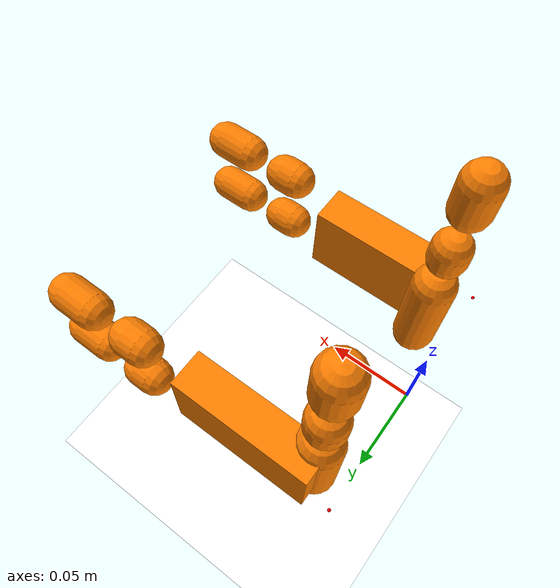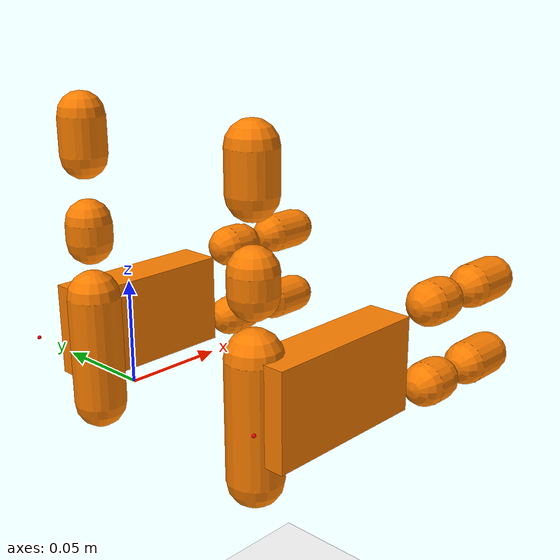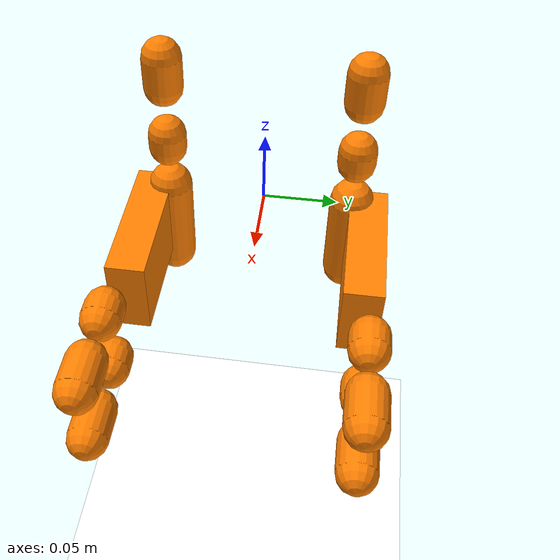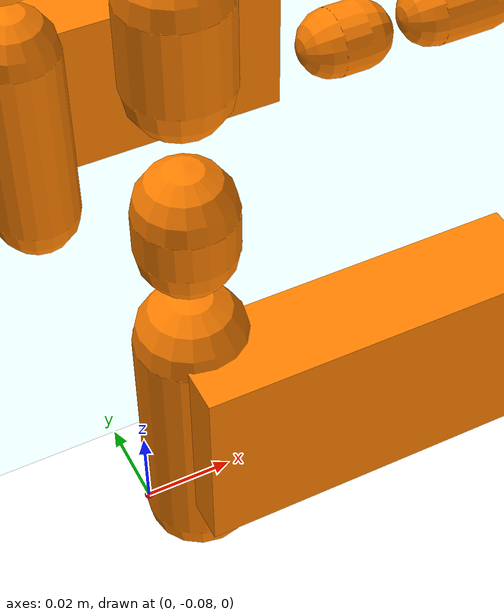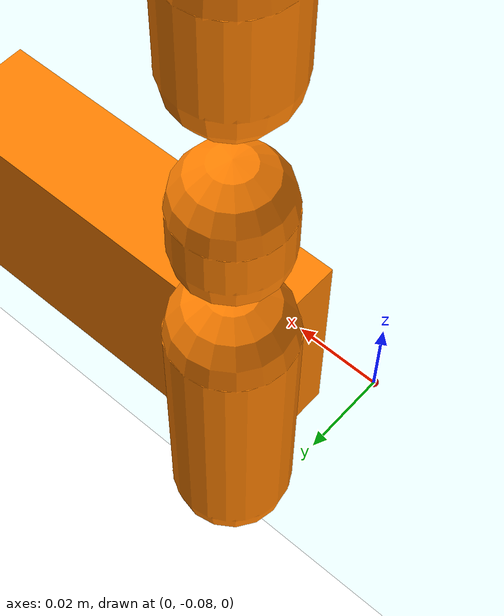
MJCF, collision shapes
<mujoco model="An empty scene">
  <include file="ftl_xleo_dual_hand_position.xml" />
  <option>
  </option>

  <default>
    <default class="convex_decomposition">
      <geom contype="1" conaffinity="15" rgba="0.3 0.3 0.3 1" condim="3" friction="0.8 0.01 0.0001" solimp="0.25 0.99 0.015 0.5 1" solref="0.03 1" />
    </default>
  </default>

  <statistic center="0.05 0 0" extent="0.6" meansize="0.01"/>

  <visual>
    <rgba force="1 0 0 1"/>
    <global azimuth="120" elevation="-40"/>
    <map force="0.01" stiffness="500"/>
    <scale forcewidth="0.1" contactwidth="0.5" contactheight="0.2"/>
    <quality shadowsize="8192"/>
  </visual>

  <asset>
    <texture type="skybox" builtin="gradient" rgb1="1 1 1" rgb2="1 1 1" width="800" height="800"/>
    <texture type="2d" name="groundplane" builtin="checker" mark="edge" rgb1="1 1 1" rgb2="1 1 1" markrgb="0 0 0" width="300" height="300"/>
    <material name="groundplane" texture="groundplane" texuniform="true" texrepeat="5 5" reflectance="0"/>
  </asset>

  <worldbody>
    <light pos="0 0 1.5" dir="0 0 -1" directional="true"/>
    <geom name="floor" pos="0 0 -0.25" size="0 0 0.01" type="plane" material="groundplane" contype="0" conaffinity="0" group="1"/>
  </worldbody>

  <!-- Exclude finger root (L0/R0) and fingertip (L2/R2) collisions with arm.
       Only wrist and finger middle links (L1/R1) participate in massage contact. -->

</mujoco>

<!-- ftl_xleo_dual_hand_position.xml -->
<mujoco model="xleo">
  <option timestep="0.002" integrator="Euler">
    <flag eulerdamp="disable" />
  </option>

  <compiler angle="radian" meshdir="../ftl_meshes/"/>

  <default>
    <default class="visual">
      <geom type="mesh" contype="0" conaffinity="0" group="0" density="0" rgba="0.1 0.1 0.1 1"/>
    </default>
    <default class="collision">
      <geom type="mesh" group="3" rgba="1 0.5 0 1" contype="1" conaffinity="1"/>
    </default>
    <default class="finger_joint">
      <joint damping="0.1" armature="0.01" frictionloss="0.02"/>
    </default>
  </default>

  <asset>
    <mesh name="LINK_HAND_BASE_L" content_type="model/stl" file="LINK_HAND_BASE_L.STL"/>
    <mesh name="LINK_HAND_BASE_L_convex" content_type="model/stl" file="convex_new/LINK_HAND_BASE_L_convex.stl"/>
    <mesh name="LINK_F0_L0" content_type="model/stl" file="LINK_F0_L0.STL"/>
    <mesh name="LINK_F0_L0_convex" content_type="model/stl" file="convex_new/LINK_F0_L0_convex.stl"/>
    <mesh name="LINK_F0_L1" content_type="model/stl" file="LINK_F0_L1.STL"/>
    <mesh name="LINK_F0_L1_convex" content_type="model/stl" file="convex_new/LINK_F0_L1_convex.stl"/>
    <mesh name="LINK_F0_L2" content_type="model/stl" file="LINK_F0_L2.STL"/>
    <mesh name="LINK_F0_L2_convex" content_type="model/stl" file="convex_new/LINK_F0_L2_convex.stl"/>
    <mesh name="LINK_F1_L0" content_type="model/stl" file="LINK_F1_L0.STL"/>
    <mesh name="LINK_F1_L0_convex" content_type="model/stl" file="convex_new/LINK_F1_L0_convex.stl"/>
    <mesh name="LINK_F1_L1" content_type="model/stl" file="LINK_F1_L1.STL"/>
    <mesh name="LINK_F1_L1_convex" content_type="model/stl" file="convex_new/LINK_F1_L1_convex.stl"/>
    <mesh name="LINK_F1_L2" content_type="model/stl" file="LINK_F1_L2.STL"/>
    <mesh name="LINK_F1_L2_convex" content_type="model/stl" file="convex_new/LINK_F1_L2_convex.stl"/>
    <mesh name="LINK_F2_L0" content_type="model/stl" file="LINK_F2_L0.STL"/>
    <mesh name="LINK_F2_L0_convex" content_type="model/stl" file="convex_new/LINK_F2_L0_convex.stl"/>
    <mesh name="LINK_F2_L1" content_type="model/stl" file="LINK_F2_L1.STL"/>
    <mesh name="LINK_F2_L1_convex" content_type="model/stl" file="convex_new/LINK_F2_L1_convex.stl"/>
    <mesh name="LINK_F2_L2" content_type="model/stl" file="LINK_F2_L2.STL"/>
    <mesh name="LINK_F2_L2_convex" content_type="model/stl" file="convex_new/LINK_F2_L2_convex.stl"/>
    <mesh name="LINK_HAND_BASE_R" content_type="model/stl" file="LINK_HAND_BASE_R.STL"/>
    <mesh name="LINK_HAND_BASE_R_convex" content_type="model/stl" file="convex_new/LINK_HAND_BASE_R_convex.stl"/>
  </asset>

  <contact>
    <exclude body1="L_WRIST" body2="LINK_F0_L0"/>
    <exclude body1="L_WRIST" body2="LINK_F1_L0"/>
    <exclude body1="L_WRIST" body2="LINK_F2_L0"/>
    <exclude body1="L_WRIST" body2="LINK_F0_L1"/>
    <exclude body1="L_WRIST" body2="LINK_F1_L1"/>
    <exclude body1="L_WRIST" body2="LINK_F2_L1"/>

    <exclude body1="R_WRIST" body2="LINK_F0_R0"/>
    <exclude body1="R_WRIST" body2="LINK_F1_R0"/>
    <exclude body1="R_WRIST" body2="LINK_F2_R0"/>
    <exclude body1="R_WRIST" body2="LINK_F0_R1"/>
    <exclude body1="R_WRIST" body2="LINK_F1_R1"/>
    <exclude body1="R_WRIST" body2="LINK_F2_R1"/>
  </contact>

  <worldbody>
    <!-- Left hand -->
    <body name="L_WRIST" pos="0 0.08 0.0">
      <inertial pos="0.0475989 -0.0039991 0.000164171" quat="0.000685685 0.650732 -0.096053 0.753208" mass="0.5904" diaginertia="0.000778977 0.000587765 0.000437887"/>
      <joint name="J_LINK_HAND_BASE_L_X" type="slide" axis="1 0 0" range="-0.2 0.2" damping="2.0" armature="0.05"/>
      <joint name="J_LINK_HAND_BASE_L_Y" type="slide" axis="0 1 0" range="-0.2 0.2" damping="2.0" armature="0.05"/>
      <joint name="J_LINK_HAND_BASE_L_ROLL" type="hinge" axis="1 0 0" range="-1.57 1.57" damping="0.5" armature="0.005"/>
      <joint name="J_LINK_HAND_BASE_L_PITCH" type="hinge" axis="0 1 0" range="-1.57 1.57" damping="0.5" armature="0.005"/>
      <joint name="J_LINK_HAND_BASE_L_YAW" type="hinge" axis="0 0 1" range="-1.57 1.57" damping="0.5" armature="0.005"/>
      <geom class="visual" quat="0.707105 0.707108 0 0" mesh="LINK_HAND_BASE_L" rgba="1 1 1 1"/>
      <geom class="collision" type="box" pos="0.06 -0.01 0" size="0.045 0.012 0.025"/>
      <site name="site_L_WRIST" type="sphere" size="0.001" rgba="1 0 0 1" />
      <body name="LINK_F0_L0" pos="0.021499 -0.0208651 0.0224999" quat="-2.59734e-06 0.707105 0 0.707108">
        <inertial pos="-3.617e-05 0 -0.00084515" mass="0.026087" diaginertia="1.92e-06 1.52e-06 1.22e-06"/>
        <joint name="J_F0_L0" class="finger_joint" pos="0 0 0" axis="0 0 1" range="0 1.9199"/>
        <geom class="visual" mesh="LINK_F0_L0"/>
        <geom class="collision" type="capsule" pos="-0.03 0 0" quat="0.707 0 0.707 0" size="0.014 0.03"/>
        <site name="site_F0_L0" size="0.001"/>
        <body name="LINK_F0_L1" quat="0.707105 0.707108 0 0">
          <inertial pos="0.0375062 -8.894e-05 0.0001648" quat="0.511508 0.483488 0.515615 0.48861" mass="0.0688816" diaginertia="2.05529e-05 2.00084e-05 6.49879e-06"/>
          <joint name="J_F0_L1" class="finger_joint" pos="0 0 0" axis="0 0 1" range="-0.1745 0.7854"/>
          <geom class="visual" mesh="LINK_F0_L1"/>
          <geom class="collision" type="capsule" pos="0.035 0 0" quat="0.707 0 0.707 0" size="0.012 0.005"/>
          <body name="LINK_F0_L2" pos="0.05425 0 0">
            <inertial pos="0.0208975 -0.00213483 -0.00106078" quat="0.479898 0.503774 0.561192 0.448301" mass="0.0310237" diaginertia="7.08669e-06 6.49441e-06 2.3189e-06"/>
            <joint name="J_F0_L2" class="finger_joint" pos="0 0 0" axis="0 0 1" range="-0.4363 1.5708"/>
            <geom class="visual" mesh="LINK_F0_L2"/>
            <geom class="collision" type="capsule" pos="0.03 0 0" quat="0.707 0 0.707 0" size="0.012 0.01"/>
          </body>
        </body>
      </body>
      <body name="LINK_F1_L0" pos="0.10232 -0.00574008 0.0225" quat="-3.67321e-06 1 0 0">
        <inertial pos="3.617e-05 0 0.00084515" mass="0.026087" diaginertia="1.92e-06 1.52e-06 1.22e-06"/>
        <joint name="J_F1_L0" class="finger_joint" pos="0 0 0" axis="0 0 1" range="-0.4363 1.8326"/>
        <geom class="visual" mesh="LINK_F1_L0"/>
        <site name="site_F1_L0" size="0.001"/>
        <body name="LINK_F1_L1" quat="0.707105 -0.707108 0 0">
          <inertial pos="0.0324375 -0.00016602 -0.0001648" quat="0.492035 0.508606 0.488885 0.51011" mass="0.0702732" diaginertia="1.85812e-05 1.77891e-05 6.95973e-06"/>
          <joint name="J_F1_L1" class="finger_joint" pos="0 0 0" axis="0 0 1" range="-0.4363 0.4363"/>
          <geom class="visual" mesh="LINK_F1_L1"/>
          <geom class="collision" type="capsule" pos="0.035 0 0" quat="0.707 0 0.707 0" size="0.012 0.005"/>
          <body name="LINK_F1_L2" pos="0.04825 0 0" quat="0.707105 0.707108 0 0">
            <inertial pos="0.0208065 -0.00102362 -0.00132199" quat="0.466616 0.545959 0.523663 0.458231" mass="0.0257518" diaginertia="6.36399e-06 5.8103e-06 1.96571e-06"/>
            <joint name="J_F1_L2" class="finger_joint" pos="0 0 0" axis="0 0 1" range="-0.4363 1.5708"/>
            <geom class="visual" mesh="LINK_F1_L2"/>
            <geom class="collision" type="capsule" pos="0.03 0 0" quat="0.707 0 0.707 0" size="0.012 0.01"/>
            <site name="site_left_f1_tip" pos="0.05 0 0" euler="3.1415 0 0" type="sphere" size="0.001" rgba="1 0 0 1"/>
          </body>
        </body>
      </body>
      <body name="LINK_F2_L0" pos="0.10232 -0.00573992 -0.0225" quat="-3.67321e-06 1 0 0">
        <inertial pos="3.617e-05 0 0.00084515" mass="0.026087" diaginertia="1.92e-06 1.52e-06 1.22e-06"/>
        <joint name="J_F2_L0" class="finger_joint" pos="0 0 0" axis="0 0 1" range="-0.4363 1.8326"/>
        <geom class="visual" mesh="LINK_F2_L0"/>
        <site name="site_F2_L0" size="0.001"/>
        <body name="LINK_F2_L1" quat="0.707105 -0.707108 0 0">
          <inertial pos="0.0324375 -0.00016602 -0.0001648" quat="0.492035 0.508606 0.488885 0.51011" mass="0.0702732" diaginertia="1.85812e-05 1.77891e-05 6.95973e-06"/>
          <joint name="J_F2_L1" class="finger_joint" pos="0 0 0" axis="0 0 1" range="-0.4363 0.4363"/>
          <geom class="visual" mesh="LINK_F2_L1"/>
          <geom class="collision" type="capsule" pos="0.035 0 0" quat="0.707 0 0.707 0" size="0.012 0.005"/>
          <body name="LINK_F2_L2" pos="0.04825 0 0" quat="0.707105 0.707108 0 0">
            <inertial pos="0.0208065 -0.00102362 -0.00132199" quat="0.466616 0.545959 0.523663 0.458231" mass="0.0257518" diaginertia="6.36399e-06 5.8103e-06 1.96571e-06"/>
            <joint name="J_F2_L2" class="finger_joint" pos="0 0 0" axis="0 0 1" range="-0.4363 1.5708"/>
            <geom class="visual" mesh="LINK_F2_L2"/>
            <geom class="collision" type="capsule" pos="0.03 0 0" quat="0.707 0 0.707 0" size="0.012 0.01"/>
            <site name="site_left_f2_tip" pos="0.05 0 0" euler="3.1415 0 0" type="sphere" size="0.001" rgba="1 0 0 1"/>
          </body>
        </body>
      </body>
    </body>

    <!-- Right hand -->
    <body name="R_WRIST" pos="0 -0.08 0.0">
      <inertial pos="0.0475989 0.0039991 0.000164171" quat="0.0859322 0.650312 -0.0305688 0.754172" mass="0.5904" diaginertia="0.000777544 0.000589813 0.000437273"/>
      <joint name="J_LINK_HAND_BASE_R_X" type="slide" axis="1 0 0" range="-0.2 0.2" damping="2.0" armature="0.05"/>
      <joint name="J_LINK_HAND_BASE_R_Y" type="slide" axis="0 1 0" range="-0.2 0.2" damping="2.0" armature="0.05"/>
      <joint name="J_LINK_HAND_BASE_R_ROLL" type="hinge" axis="1 0 0" range="-1.57 1.57" damping="0.5" armature="0.005"/>
      <joint name="J_LINK_HAND_BASE_R_PITCH" type="hinge" axis="0 1 0" range="-1.57 1.57" damping="0.5" armature="0.005"/>
      <joint name="J_LINK_HAND_BASE_R_YAW" type="hinge" axis="0 0 1" range="-1.57 1.57" damping="0.5" armature="0.005"/>
      <geom class="visual" quat="0.707105 -0.707108 0 0" mesh="LINK_HAND_BASE_R" rgba="1 1 1 1"/>
      <geom class="collision" type="box" pos="0.06 0.01 0" size="0.045 0.012 0.025"/>
      <site name="site_R_WRIST" type="sphere" size="0.001" rgba="1 0 0 1"/>
      <body name="LINK_F0_R0" pos="0.021499 0.0208651 0.0224999" quat="0.707105 0 -0.707108 2.59735e-06">
        <inertial pos="-3.617e-05 0 0.00084515" mass="0.026087" diaginertia="1.92e-06 1.52e-06 1.22e-06"/>
        <joint name="J_F0_R0" class="finger_joint" pos="0 0 0" axis="0 0 1" range="0 1.9199"/>
        <geom class="visual" mesh="LINK_F0_L0"/>
        <geom class="collision" type="capsule" pos="-0.03 0 0" quat="0.707 0 0.707 0" size="0.014 0.03"/>
        <site name="site_F0_R0" size="0.001"/>
        <body name="LINK_F0_R1" quat="0.707105 -0.707108 0 0">
          <inertial pos="0.0375062 -8.894e-05 -0.0001648" quat="0.483488 0.511508 0.48861 0.515615" mass="0.0688816" diaginertia="2.05529e-05 2.00084e-05 6.49879e-06"/>
          <joint name="J_F0_R1" class="finger_joint" pos="0 0 0" axis="0 0 1" range="-0.1745 0.7854"/>
          <geom class="visual" mesh="LINK_F0_L1"/>
          <geom class="collision" type="capsule" pos="0.035 0 0" quat="0.707 0 0.707 0" size="0.012 0.005"/>
          <body name="LINK_F0_R2" pos="0.05425 0 0">
            <inertial pos="0.0208975 -0.00213483 0.00106078" quat="0.447875 0.539993 0.526612 0.480099" mass="0.0310237" diaginertia="7.08344e-06 6.49812e-06 2.31845e-06"/>
            <joint name="J_F0_R2" class="finger_joint" pos="0 0 0" axis="0 0 1" range="-0.4363 1.5708"/>
            <geom class="visual" mesh="LINK_F0_L2"/>
            <geom class="collision" type="capsule" pos="0.03 0 0" quat="0.707 0 0.707 0" size="0.012 0.01"/>
          </body>
        </body>
      </body>
      <body name="LINK_F1_R0" pos="0.10232 0.00574008 0.0225">
        <inertial pos="3.617e-05 0 -0.00084515" mass="0.026087" diaginertia="1.92e-06 1.52e-06 1.22e-06"/>
        <joint name="J_F1_R0" class="finger_joint" pos="0 0 0" axis="0 0 1" range="-0.4363 1.8326"/>
        <geom class="visual" mesh="LINK_F1_L0"/>
        <site name="site_F1_R0" size="0.001"/>
        <body name="LINK_F1_R1" quat="0.707105 0.707108 0 0">
          <inertial pos="0.0324375 -0.00016602 0.0001648" quat="0.508606 0.492035 0.51011 0.488885" mass="0.0702732" diaginertia="1.85812e-05 1.77891e-05 6.95973e-06"/>
          <joint name="J_F1_R1" class="finger_joint" pos="0 0 0" axis="0 0 1" range="-0.4363 0.4363"/>
          <geom class="visual" mesh="LINK_F1_L1"/>
          <geom class="collision" type="capsule" pos="0.035 0 0" quat="0.707 0 0.707 0" size="0.012 0.005"/>
          <body name="LINK_F1_R2" pos="0.04825 0 0" quat="0.707105 -0.707108 0 0">
            <inertial pos="0.0208065 -0.00102362 0.00132199" quat="0.545959 0.466616 0.458231 0.523663" mass="0.0257518" diaginertia="6.36399e-06 5.8103e-06 1.96571e-06"/>
            <joint name="J_F1_R2" class="finger_joint" pos="0 0 0" axis="0 0 1" range="-0.4363 1.5708"/>
            <geom class="visual" mesh="LINK_F1_L2"/>
            <geom class="collision" type="capsule" pos="0.03 0 0" quat="0.707 0 0.707 0" size="0.012 0.01"/>
            <site name="site_right_f1_tip" pos="0.05 0 0" type="sphere" size="0.001" rgba="1 0 0 1"/>
          </body>
        </body>
      </body>
      <body name="LINK_F2_R0" pos="0.10232 0.00573992 -0.0225">
        <inertial pos="3.617e-05 0 -0.00084515" mass="0.026087" diaginertia="1.92e-06 1.52e-06 1.22e-06"/>
        <joint name="J_F2_R0" class="finger_joint" pos="0 0 0" axis="0 0 1" range="-0.4363 1.8326"/>
        <geom class="visual" mesh="LINK_F2_L0"/>
        <site name="site_F2_R0" size="0.001"/>
        <body name="LINK_F2_R1" quat="0.707105 0.707108 0 0">
          <inertial pos="0.0324375 -0.00016602 0.0001648" quat="0.508606 0.492035 0.51011 0.488885" mass="0.0702732" diaginertia="1.85812e-05 1.77891e-05 6.95973e-06"/>
          <joint name="J_F2_R1" class="finger_joint" pos="0 0 0" axis="0 0 1" range="-0.4363 0.4363"/>
          <geom class="visual" mesh="LINK_F2_L1"/>
          <geom class="collision" type="capsule" pos="0.035 0 0" quat="0.707 0 0.707 0" size="0.012 0.005"/>
          <body name="LINK_F2_R2" pos="0.04825 0 0" quat="0.707105 -0.707108 0 0">
            <inertial pos="0.0208065 -0.00102362 0.00132199" quat="0.545959 0.466616 0.458231 0.523663" mass="0.0257518" diaginertia="6.36399e-06 5.8103e-06 1.96571e-06"/>
            <joint name="J_F2_R2" class="finger_joint" pos="0 0 0" axis="0 0 1" range="-0.4363 1.5708"/>
            <geom class="visual" mesh="LINK_F2_L2"/>
            <geom class="collision" type="capsule" pos="0.03 0 0" quat="0.707 0 0.707 0" size="0.012 0.01"/>
            <site name="site_right_f2_tip" pos="0.05 0 0" type="sphere" size="0.001" rgba="1 0 0 1"/>
          </body>
        </body>
      </body>
    </body>
  </worldbody>

  <actuator>
    <position name="P_LINK_HAND_BASE_L_X" joint="J_LINK_HAND_BASE_L_X" ctrlrange="-0.2 0.2" kp="100" kv="20"/>
    <position name="P_LINK_HAND_BASE_L_Y" joint="J_LINK_HAND_BASE_L_Y" ctrlrange="-0.2 0.2" kp="100" kv="20"/>
    <position name="P_LINK_HAND_BASE_L_ROLL" joint="J_LINK_HAND_BASE_L_ROLL" ctrlrange="-1.57 1.57" kp="10" kv="0.5"/>
    <position name="P_LINK_HAND_BASE_L_PITCH" joint="J_LINK_HAND_BASE_L_PITCH" ctrlrange="-1.57 1.57" kp="10" kv="0.5"/>
    <position name="P_LINK_HAND_BASE_L_YAW" joint="J_LINK_HAND_BASE_L_YAW" ctrlrange="-1.57 1.57" kp="10" kv="0.5"/>
    <position name="P_F0_L0" joint="J_F0_L0" ctrlrange="0 1.9199" kp="3" kv="0.1"/>
    <position name="P_F0_L1" joint="J_F0_L1" ctrlrange="-0.1745 0.7854" kp="3" kv="0.1"/>
    <position name="P_F0_L2" joint="J_F0_L2" ctrlrange="-0.4363 1.5708" kp="3" kv="0.1"/>
    <position name="P_F1_L0" joint="J_F1_L0" ctrlrange="-0.4363 1.8326" kp="3" kv="0.1"/>
    <position name="P_F1_L1" joint="J_F1_L1" ctrlrange="-0.4363 0.4363" kp="3" kv="0.1"/>
    <position name="P_F1_L2" joint="J_F1_L2" ctrlrange="-0.4363 1.5708" kp="3" kv="0.1"/>
    <position name="P_F2_L0" joint="J_F2_L0" ctrlrange="-0.4363 1.8326" kp="3" kv="0.1"/>
    <position name="P_F2_L1" joint="J_F2_L1" ctrlrange="-0.4363 0.4363" kp="3" kv="0.1"/>
    <position name="P_F2_L2" joint="J_F2_L2" ctrlrange="-0.4363 1.5708" kp="3" kv="0.1"/>

    <position name="P_LINK_HAND_BASE_R_X" joint="J_LINK_HAND_BASE_R_X" ctrlrange="-0.2 0.2" kp="100" kv="20"/>
    <position name="P_LINK_HAND_BASE_R_Y" joint="J_LINK_HAND_BASE_R_Y" ctrlrange="-0.2 0.2" kp="100" kv="20"/>
    <position name="P_LINK_HAND_BASE_R_ROLL" joint="J_LINK_HAND_BASE_R_ROLL" ctrlrange="-1.57 1.57" kp="10" kv="0.5"/>
    <position name="P_LINK_HAND_BASE_R_PITCH" joint="J_LINK_HAND_BASE_R_PITCH" ctrlrange="-1.57 1.57" kp="10" kv="0.5"/>
    <position name="P_LINK_HAND_BASE_R_YAW" joint="J_LINK_HAND_BASE_R_YAW" ctrlrange="-1.57 1.57" kp="10" kv="0.5"/>
    <position name="P_F0_R0" joint="J_F0_R0" ctrlrange="0 1.9199" kp="3" kv="0.1"/>
    <position name="P_F0_R1" joint="J_F0_R1" ctrlrange="-0.1745 0.7854" kp="3" kv="0.1"/>
    <position name="P_F0_R2" joint="J_F0_R2" ctrlrange="-0.4363 1.5708" kp="3" kv="0.1"/>
    <position name="P_F1_R0" joint="J_F1_R0" ctrlrange="-0.4363 1.8326" kp="3" kv="0.1"/>
    <position name="P_F1_R1" joint="J_F1_R1" ctrlrange="-0.4363 0.4363" kp="3" kv="0.1"/>
    <position name="P_F1_R2" joint="J_F1_R2" ctrlrange="-0.4363 1.5708" kp="3" kv="0.1"/>
    <position name="P_F2_R0" joint="J_F2_R0" ctrlrange="-0.4363 1.8326" kp="3" kv="0.1"/>
    <position name="P_F2_R1" joint="J_F2_R1" ctrlrange="-0.4363 0.4363" kp="3" kv="0.1"/>
    <position name="P_F2_R2" joint="J_F2_R2" ctrlrange="-0.4363 1.5708" kp="3" kv="0.1"/>
  </actuator>

  <sensor>
    <force name="S_FORCE_L_WRIST" site="site_L_WRIST"/>
    <force name="S_FORCE_F0_L0" site="site_F0_L0"/>
    <force name="S_FORCE_F1_L0" site="site_F1_L0"/>
    <force name="S_FORCE_F2_L0" site="site_F2_L0"/>
    <force name="S_FORCE_R_WRIST" site="site_R_WRIST"/>
    <force name="S_FORCE_F0_R0" site="site_F0_R0"/>
    <force name="S_FORCE_F1_R0" site="site_F1_R0"/>
    <force name="S_FORCE_F2_R0" site="site_F2_R0"/>
  </sensor>

  <keyframe>
    <key name="home" qpos="-0.     0.02   0.003  0.012 -0.041  0.     0.    -0.     1.007 -0.016
 -0.     1.007 -0.016 -0.    -0.    -0.02  -0.003  0.012  0.041  0.
  0.    -0.     1.007 -0.016 -0.     1.007 -0.016 -0.   " ctrl="-0.     0.02   0.003  0.012 -0.041  0.     0.    -0.     1.007 -0.016
 -0.     1.007 -0.016 -0.    -0.    -0.02  -0.003  0.012  0.041  0.
  0.    -0.     1.007 -0.016 -0.     1.007 -0.016 -0.   "/>
  </keyframe>
</mujoco>
